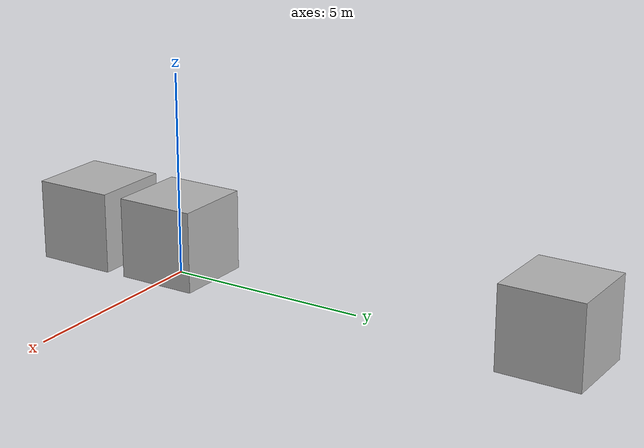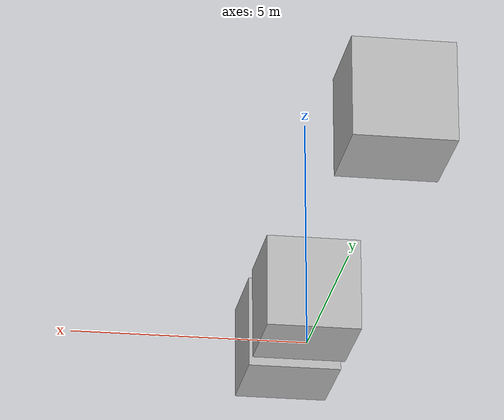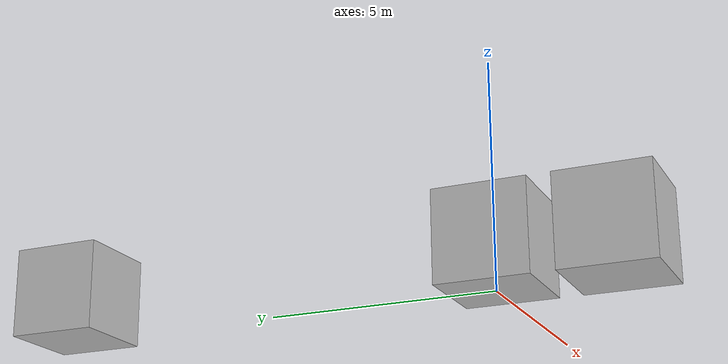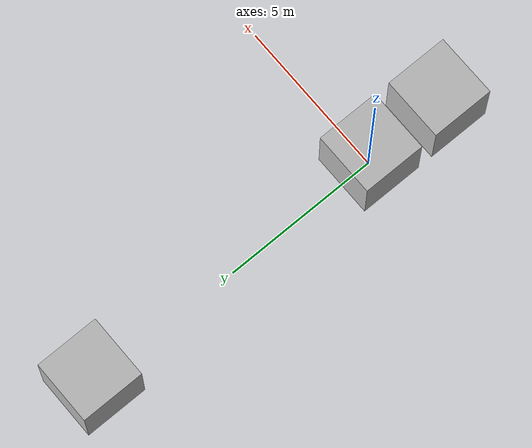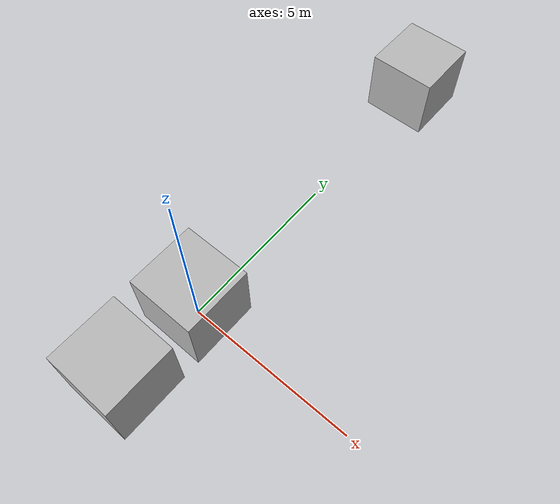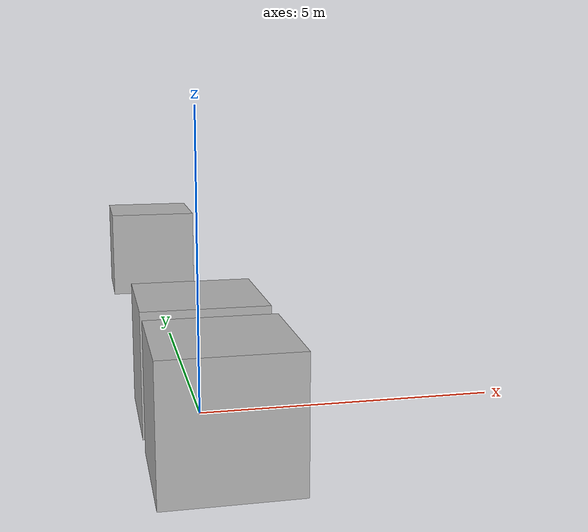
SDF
<?xml version="1.0" ?>
<sdf version="1.4">
  <model name="mesh_box1">
    <pose>0 0 1 0 0 0</pose>
    <link name="box1">
      <pose>0 0 0 0 0 0</pose>
      <inertial>
        <mass>0.5</mass>
      </inertial>
      <visual name="mesh_box">
        <pose>0 0 0 0 0 0</pose>
        <geometry>
          <mesh>
            <uri>meshes/box.obj</uri>
          </mesh>
        </geometry>
        <material/>
      </visual>
      <collision name="mesh_box">
        <laser_retro>0</laser_retro>
        <max_contacts>10</max_contacts>
        <pose frame="">0 0 0 0 0 0</pose>
        <geometry>
          <box>
            <size>1 1 1</size>
          </box>
        </geometry>
      </collision>
    </link>
    <static>1</static>
  </model>
  <model name="mesh_box2">
    <pose>0 -2.5 1 0 0 0</pose>
    <link name="box2">
      <pose>0 0 0 0 0 0</pose>
      <inertial>
        <mass>0.5</mass>
      </inertial>
      <visual name="mesh_box">
        <pose>0 0 0 0 0 0</pose>
        <geometry>
          <mesh>
            <uri>meshes/box.obj</uri>
          </mesh>
        </geometry>
        <material/>
      </visual>
      <collision name="mesh_box">
        <laser_retro>0</laser_retro>
        <max_contacts>10</max_contacts>
        <pose frame="">0 0 0 0 0 0</pose>
        <geometry>
          <box>
            <size>1 1 1</size>
          </box>
        </geometry>
      </collision>
    </link>
    <static>1</static>
  </model>
  <model name="mesh_box3">
    <!-- This is placing the object outside of the view frustum. -->
    <pose>0 10 1 0 0 0</pose>
    <link name="box3">
      <pose>0 0 0 0 0 0</pose>
      <inertial>
        <mass>0.5</mass>
      </inertial>
      <visual name="mesh_box">
        <pose>0 0 0 0 0 0</pose>
        <geometry>
          <mesh>
            <uri>meshes/box.obj</uri>
          </mesh>
        </geometry>
        <material/>
      </visual>
      <collision name="mesh_box">
        <laser_retro>0</laser_retro>
        <max_contacts>10</max_contacts>
        <pose frame="">0 0 0 0 0 0</pose>
        <geometry>
          <box>
            <size>1 1 1</size>
          </box>
        </geometry>
      </collision>
    </link>
    <static>1</static>
  </model>
</sdf>
